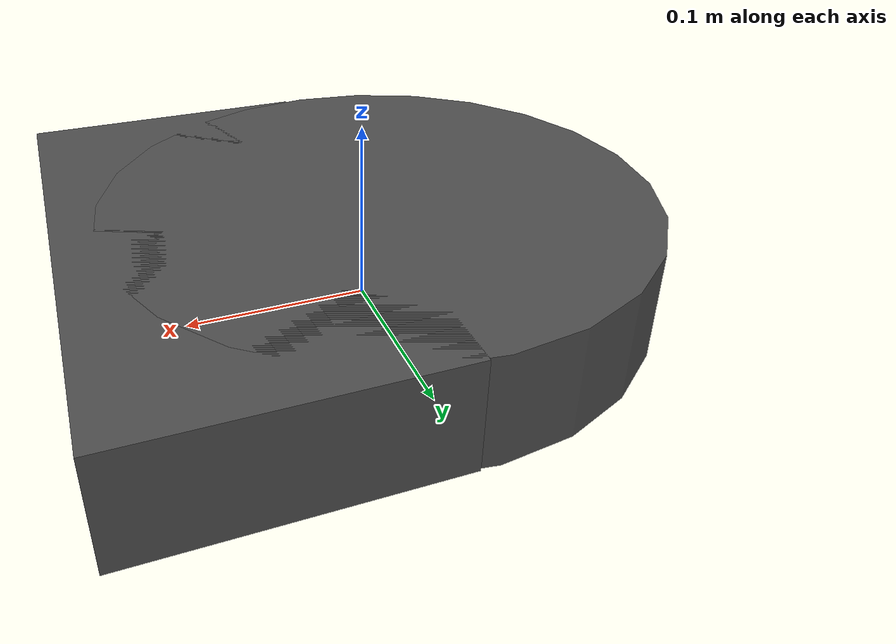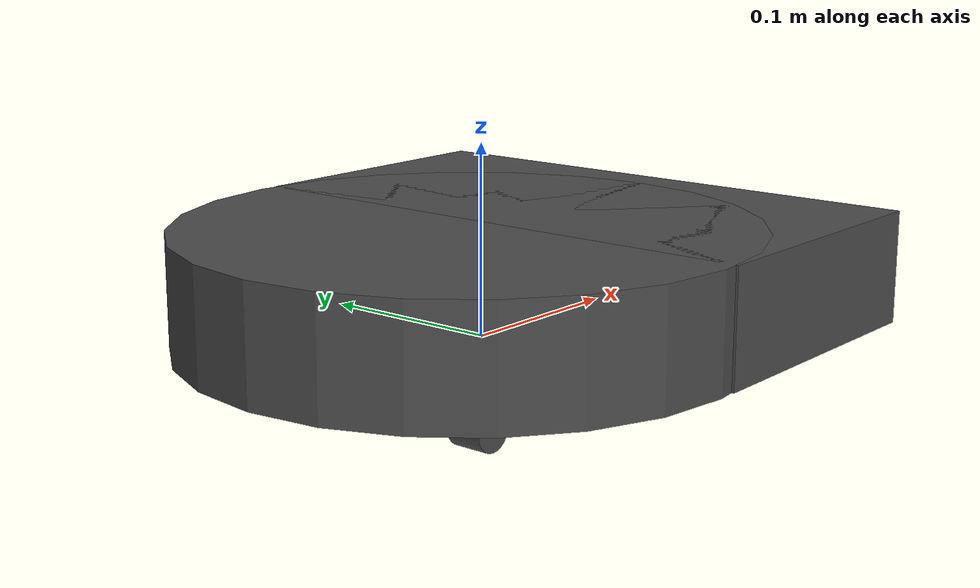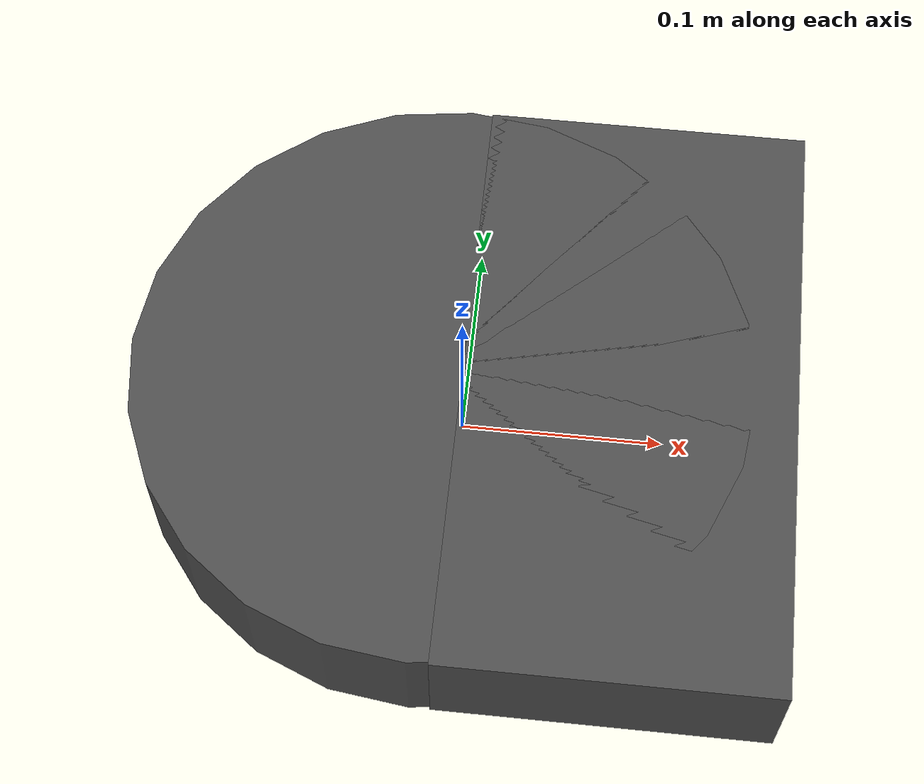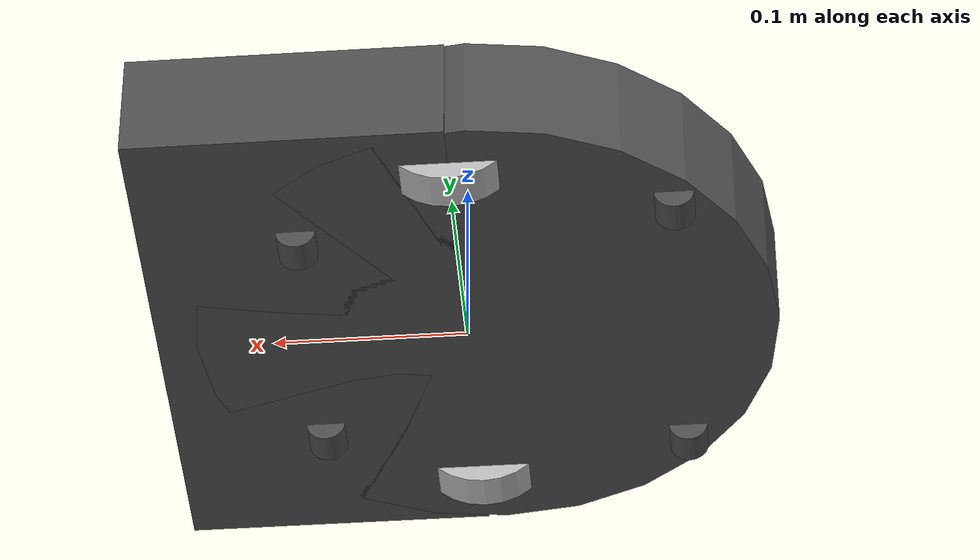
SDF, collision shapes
<sdf version='1.5'>
  <model name='neato_standalone'>
    <link name='base_footprint'>
      <pose frame=''>0 0 0 0 -0 0</pose>
      <inertial>
        <pose frame=''>0.00959 -0 8e-06 0 -0 0</pose>
        <mass>2.44131</mass>
        <inertia>
          <ixx>0.0246781</ixx>
          <ixy>-1.03977e-21</ixy>
          <ixz>1.82757e-06</ixz>
          <iyy>0.0246891</iyy>
          <iyz>-8.48244e-25</iyz>
          <izz>0.0418184</izz>
        </inertia>
      </inertial>
      <collision name='base_footprint_fixed_joint_lump__base_link_collision'>
        <pose frame=''>-0.01 0 0.03 0 -0 0</pose>
        <geometry>
          <cylinder>
            <length>0.06</length>
            <radius>0.15</radius>
          </cylinder>
        </geometry>
        <surface>
          <contact>
            <ode/>
          </contact>
          <friction>
            <ode>
              <mu>0.3</mu>
              <mu2>0.3</mu2>
            </ode>
          </friction>
        </surface>
      </collision>
      <collision name='base_footprint_fixed_joint_lump__base_link_collision_1'>
        <pose frame=''>0.08 0 0.03 0 -0 0</pose>
        <geometry>
          <box>
            <size>0.16 0.3 0.06</size>
          </box>
        </geometry>
        <surface>
          <contact>
            <ode/>
          </contact>
          <friction>
            <ode>
              <mu>0.3</mu>
              <mu2>0.3</mu2>
            </ode>
          </friction>
        </surface>
      </collision>
      <collision name='base_footprint_fixed_joint_lump__caster_back_left_link_collision_3'>
        <pose frame=''>-0.11 0.09 0 1.5708 -0 0</pose>
        <geometry>
          <cylinder>
            <length>0.0176</length>
            <radius>0.01</radius>
          </cylinder>
        </geometry>
        <surface>
          <contact>
            <ode>
              <kp>1e+06</kp>
              <kd>100</kd>
              <max_vel>1</max_vel>
              <min_depth>0.001</min_depth>
            </ode>
          </contact>
          <friction>
            <ode>
              <mu>0</mu>
              <mu2>0</mu2>
            </ode>
          </friction>
        </surface>
      </collision>
      <collision name='base_footprint_fixed_joint_lump__caster_back_right_link_collision_4'>
        <pose frame=''>-0.11 -0.09 0 1.5708 -0 0</pose>
        <geometry>
          <cylinder>
            <length>0.0176</length>
            <radius>0.01</radius>
          </cylinder>
        </geometry>
        <surface>
          <contact>
            <ode>
              <kp>1e+06</kp>
              <kd>100</kd>
              <max_vel>1</max_vel>
              <min_depth>0.001</min_depth>
            </ode>
          </contact>
          <friction>
            <ode>
              <mu>0</mu>
              <mu2>0</mu2>
            </ode>
          </friction>
        </surface>
      </collision>
      <collision name='base_footprint_fixed_joint_lump__caster_front_left_link_collision_5'>
        <pose frame=''>0.08 0.075 0 1.5708 -0 0</pose>
        <geometry>
          <cylinder>
            <length>0.0176</length>
            <radius>0.01</radius>
          </cylinder>
        </geometry>
        <surface>
          <contact>
            <ode>
              <kp>1e+06</kp>
              <kd>100</kd>
              <max_vel>1</max_vel>
              <min_depth>0.001</min_depth>
            </ode>
          </contact>
          <friction>
            <ode>
              <mu>0</mu>
              <mu2>0</mu2>
            </ode>
          </friction>
        </surface>
      </collision>
      <collision name='base_footprint_fixed_joint_lump__caster_front_right_link_collision_6'>
        <pose frame=''>0.08 -0.075 0 1.5708 -0 0</pose>
        <geometry>
          <cylinder>
            <length>0.0176</length>
            <radius>0.01</radius>
          </cylinder>
        </geometry>
        <surface>
          <contact>
            <ode>
              <kp>1e+06</kp>
              <kd>100</kd>
              <max_vel>1</max_vel>
              <min_depth>0.001</min_depth>
            </ode>
          </contact>
          <friction>
            <ode>
              <mu>0</mu>
              <mu2>0</mu2>
            </ode>
          </friction>
        </surface>
      </collision>
      <visual name='base_footprint_fixed_joint_lump__base_link_visual'>
        <pose frame=''>0 0 0 0 -0 0</pose>
        <geometry>
          <mesh>
            <scale>0.001 0.001 0.001</scale>
            <uri>model://neato/meshes/main_body.stl</uri>
          </mesh>
        </geometry>
        <material>
          <script>
            <name>Gazebo/DarkGrey</name>
            <uri>file://media/materials/scripts/gazebo.material</uri>
          </script>
        </material>
      </visual>
      <velocity_decay/>
      <velocity_decay/>
      <sensor name='bumpers' type='contact'>
        <update_rate>10</update_rate>
        <contact>
          <collision>base_footprint_fixed_joint_lump__base_link_collision_1</collision>
        </contact>
        <plugin name='gazebo_ros_bumper_controller' filename='libgazebo_ros_bumper.so'>
          <ros>
            <remapping>bumper_states:=bumper</remapping>
          </ros>
          <frame_name>world</frame_name>
        </plugin>
      </sensor>
      <velocity_decay/>
      <sensor name='camera' type='camera'>
        <update_rate>10</update_rate>
        <camera name='camera'>
          <horizontal_fov>1.39626</horizontal_fov>
          <image>
            <width>1024</width>
            <height>768</height>
            <format>R8G8B8</format>
          </image>
          <clip>
            <near>0.02</near>
            <far>300</far>
          </clip>
          <noise>
            <type>gaussian</type>
            <mean>0</mean>
            <stddev>0.007</stddev>
          </noise>
        </camera>
        <plugin name='camera_controller' filename='libgazebo_ros_camera.so'>
        </plugin>
        <pose frame=''>-0.1 0 0.25 0 -0 0</pose>
      </sensor>
      <velocity_decay/>
      <velocity_decay/>
      <velocity_decay/>
      <velocity_decay/>
      <velocity_decay/>
      <gravity>1</gravity>
      <sensor name='imu_sensor' type='imu'>
        <always_on>1</always_on>
        <update_rate>100</update_rate>
        <visualize>0</visualize>
        <topic>__default_topic__</topic>
        <plugin name='imu_plugin' filename='libgazebo_ros_imu_sensor.so'>
          <ros>
             <remapping>~/out:=imu</remapping>
          </ros>
          <body_name>imu_link</body_name>
          <update_rate>10.0</update_rate>
          <gaussian_noise>0.0</gaussian_noise>
          <xyz_offset>0 0 0</xyz_offset>
          <rpy_offset>0 0 0</rpy_offset>
          <frame_name>imu_link</frame_name>
        </plugin>
        <pose frame=''>0 0 0 0 -0 0</pose>
      </sensor>
      <gravity>1</gravity>
      <velocity_decay/>
      <sensor name='laser' type='ray'>
        <always_on>1</always_on>
        <update_rate>5</update_rate>
        <ray>
          <scan>
            <horizontal>
              <samples>361</samples>
              <resolution>1</resolution>
              <min_angle>-3.14159</min_angle>
              <max_angle>3.14159</max_angle>
            </horizontal>
          </scan>
          <range>
            <min>0.1</min>
            <max>5</max>
            <resolution>1</resolution>
          </range>
        </ray>
        <plugin name='gazebo_ros_laser_controller' filename='libgazebo_ros_ray_sensor.so'>
          <ros>
            <remapping>~/out:=scan</remapping>
          </ros>

          <output_type>sensor_msgs/LaserScan</output_type>
          <frame_name>base_laser_link</frame_name>
        </plugin>
        <pose frame=''>-0.084 0 0.166 0 -0 -3.14159</pose>
      </sensor>
    </link>
    <link name='wheel_left_link'>
      <pose frame=''>0 0.1175 0.025 0 -0 0</pose>
      <inertial>
        <pose frame=''>0 0 0 0 -0 0</pose>
        <mass>0.01</mass>
        <inertia>
          <ixx>0.001</ixx>
          <ixy>0</ixy>
          <ixz>0</ixz>
          <iyy>0.001</iyy>
          <iyz>0</iyz>
          <izz>0.001</izz>
        </inertia>
      </inertial>
      <collision name='wheel_left_link_collision'>
        <pose frame=''>0 0 0 1.5708 -0 0</pose>
        <geometry>
          <cylinder>
            <length>0.0206</length>
            <radius>0.035</radius>
          </cylinder>
        </geometry>
        <surface>
          <contact>
            <ode>
              <kp>1e+06</kp>
              <kd>100</kd>
              <max_vel>1</max_vel>
              <min_depth>0.001</min_depth>
            </ode>
          </contact>
          <friction>
            <ode>
              <mu>1</mu>
              <mu2>1</mu2>
            </ode>
          </friction>
        </surface>
      </collision>
      <visual name='wheel_left_link_visual'>
        <pose frame=''>0 0 0 1.5708 -0 0</pose>
        <geometry>
          <mesh>
            <scale>1 1 1</scale>
            <uri>model://neato/meshes/wheel.dae</uri>
          </mesh>
        </geometry>
        <material>
          <script>
            <uri>__default__</uri>
            <name>__default__</name>
          </script>
        </material>
      </visual>
      <gravity>1</gravity>
      <velocity_decay/>
    </link>
    <joint name='wheel_left_joint' type='revolute'>
      <child>wheel_left_link</child>
      <parent>base_footprint</parent>
      <axis>
        <xyz>0 1 0</xyz>
        <limit>
          <lower>-1e+16</lower>
          <upper>1e+16</upper>
        </limit>
        <dynamics>
          <spring_reference>0</spring_reference>
          <spring_stiffness>0</spring_stiffness>
        </dynamics>
        <use_parent_model_frame>1</use_parent_model_frame>
      </axis>
    </joint>
    <link name='wheel_right_link'>
      <pose frame=''>0 -0.1175 0.025 0 -0 0</pose>
      <inertial>
        <pose frame=''>0 0 0 0 -0 0</pose>
        <mass>0.01</mass>
        <inertia>
          <ixx>0.001</ixx>
          <ixy>0</ixy>
          <ixz>0</ixz>
          <iyy>0.001</iyy>
          <iyz>0</iyz>
          <izz>0.001</izz>
        </inertia>
      </inertial>
      <collision name='wheel_right_link_collision'>
        <pose frame=''>0 0 0 1.5708 -0 0</pose>
        <geometry>
          <cylinder>
            <length>0.0206</length>
            <radius>0.035</radius>
          </cylinder>
        </geometry>
        <surface>
          <contact>
            <ode>
              <kp>1e+06</kp>
              <kd>100</kd>
              <max_vel>1</max_vel>
              <min_depth>0.001</min_depth>
            </ode>
          </contact>
          <friction>
            <ode>
              <mu>1</mu>
              <mu2>1</mu2>
            </ode>
          </friction>
        </surface>
      </collision>
      <visual name='wheel_right_link_visual'>
        <pose frame=''>0 0 0 1.5708 -0 0</pose>
        <geometry>
          <mesh>
            <scale>1 1 1</scale>
            <uri>model://neato/meshes/wheel.dae</uri>
          </mesh>
        </geometry>
        <material>
          <script>
            <uri>__default__</uri>
            <name>__default__</name>
          </script>
        </material>
      </visual>
      <gravity>1</gravity>
      <velocity_decay/>
    </link>
    <joint name='wheel_right_joint' type='revolute'>
      <child>wheel_right_link</child>
      <parent>base_footprint</parent>
      <axis>
        <xyz>0 1 0</xyz>
        <limit>
          <lower>-1e+16</lower>
          <upper>1e+16</upper>
        </limit>
        <dynamics>
          <spring_reference>0</spring_reference>
          <spring_stiffness>0</spring_stiffness>
        </dynamics>
        <use_parent_model_frame>1</use_parent_model_frame>
      </axis>
    </joint>
    <plugin name="diff_drive" filename="libgazebo_ros_diff_drive.so">

      <ros>
        <remapping>cmd_vel:=cmd_vel_noisy</remapping>
      </ros>

      <update_rate>10</update_rate>

      <!-- wheels -->
      <left_joint>wheel_left_joint</left_joint>
      <right_joint>wheel_right_joint</right_joint>

      <!-- kinematics -->
      <wheel_separation>0.235</wheel_separation>
      <wheel_diameter>0.070</wheel_diameter>

      <!-- limits -->
      <max_wheel_torque>20</max_wheel_torque>
      <max_wheel_acceleration>2.0</max_wheel_acceleration>

      <command_topic>cmd_vel_noisy</command_topic>

      <!-- output -->
      <publish_odom>true</publish_odom>
      <publish_odom_tf>true</publish_odom_tf>
      <publish_wheel_tf>false</publish_wheel_tf>

      <odometry_topic>odom</odometry_topic>
      <odometry_frame>odom</odometry_frame>
      <robot_base_frame>base_footprint</robot_base_frame>
    </plugin>
    <plugin name="p3d_base_controller" filename="libgazebo_ros_p3d.so">
      <ros>
       <remapping>odom:=ground_truth</remapping>
      </ros>
      <alwaysOn>true</alwaysOn>
      <update_rate>50.0</update_rate>
      <body_name>base_footprint</body_name>
      <frame_name>world</frame_name>
      <xyz_offset>0 0 0</xyz_offset>
      <rpy_offset>0 0 0</rpy_offset>
    </plugin>
    <static>0</static>
    <plugin name='joint_state_publisher' filename='libgazebo_ros_joint_state_publisher.so'>
      <joint_name>wheel_left_joint</joint_name>
      <joint_name>wheel_right_joint</joint_name>
      <update_rate>10.0</update_rate>
      <alwaysOn>1</alwaysOn>
    </plugin>
  </model>
</sdf>
